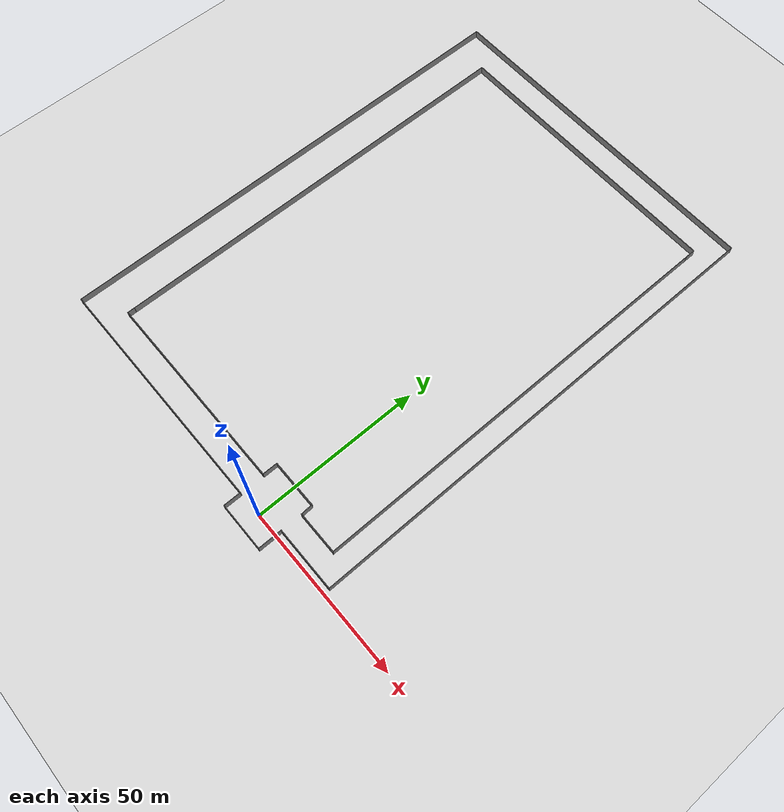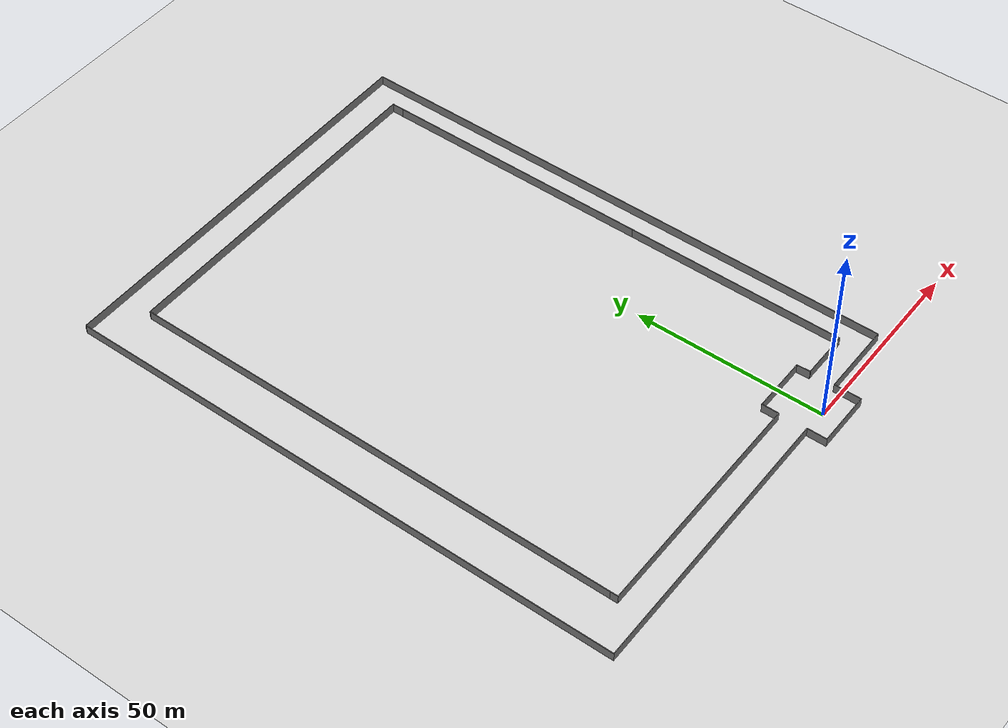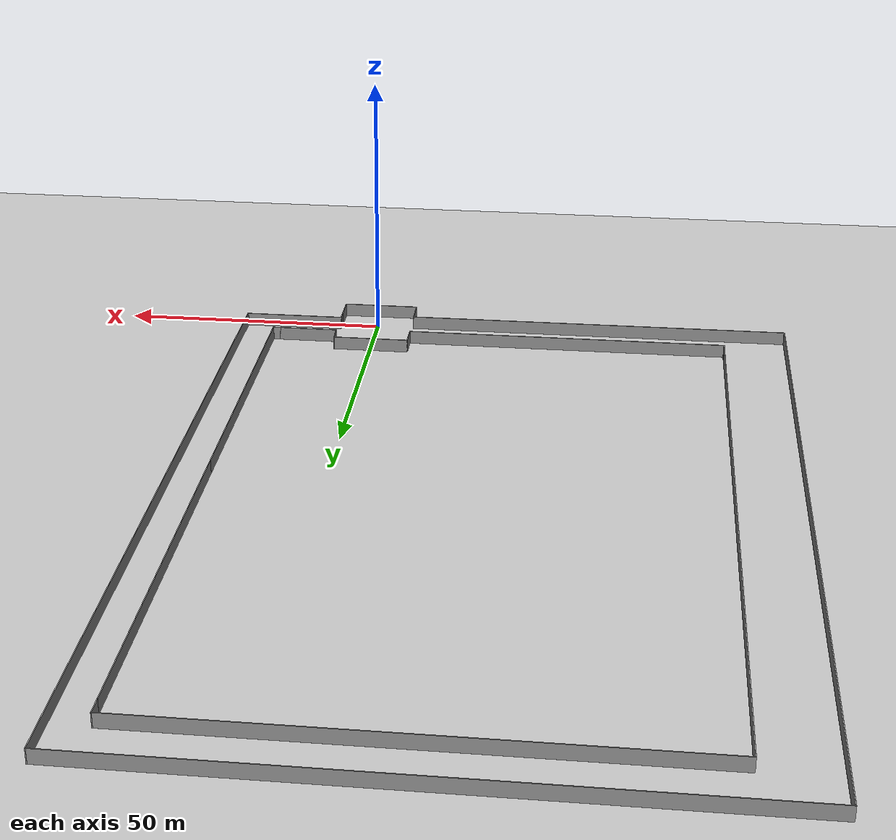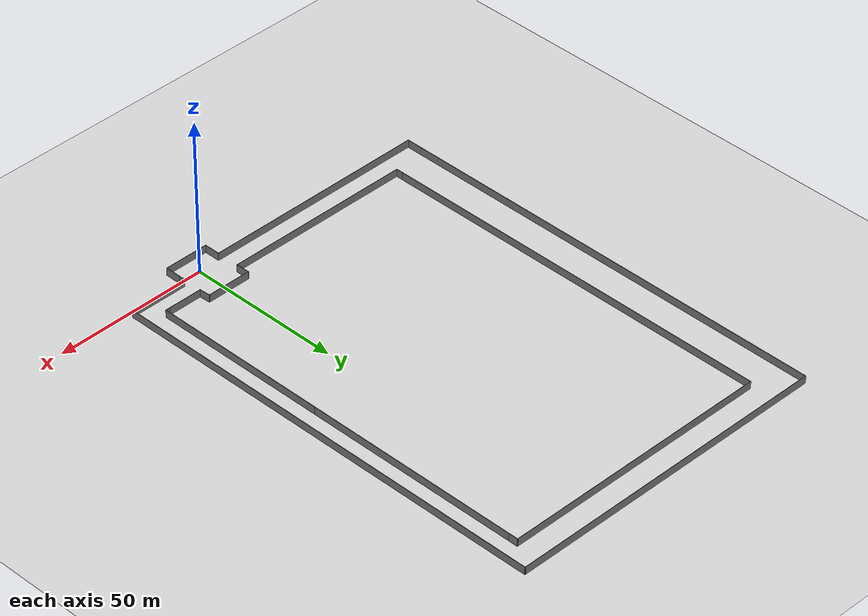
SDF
<?xml version="1.0" ?>
<sdf version="1.5">
  <world name="default">
    <!-- A global light source -->
    <include>
      <uri>model://sun</uri>
    </include>
    <!-- A ground plane -->
    <include>
      <uri>model://ground_plane</uri>
    </include>
    <include>
      <uri>model://asphalt_plane</uri>
    </include>
    <include>
      <uri>model://carto_hui</uri>
    </include>
    <physics name='default_physics' default='0' type='ode'>
      <gravity>0 0 -9.8066</gravity>
      <ode>
        <solver>
          <type>quick</type>
          <iters>10</iters>
          <sor>1.3</sor>
          <use_dynamic_moi_rescaling>0</use_dynamic_moi_rescaling>
        </solver>
        <constraints>
          <cfm>0</cfm>
          <erp>0.2</erp>
          <contact_max_correcting_vel>100</contact_max_correcting_vel>
          <contact_surface_layer>0.001</contact_surface_layer>
        </constraints>
      </ode>
      <max_step_size>0.004</max_step_size>
      <real_time_factor>1</real_time_factor>
      <real_time_update_rate>250</real_time_update_rate>
      <magnetic_field>6.0e-6 2.3e-5 -4.2e-5</magnetic_field>
    </physics>
  </world>
</sdf>

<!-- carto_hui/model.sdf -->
<sdf version='1.6'>
  <model name='carto_hui'>
    <pose frame=''>-27.0875 71.1795 0 0 -0 0</pose>
    <link name='Wall_10'>
      <collision name='Wall_10_Collision'>
        <geometry>
          <box>
            <size>19 0.15 2.5</size>
          </box>
        </geometry>
        <pose frame=''>0 0 1.25 0 -0 0</pose>
      </collision>
      <visual name='Wall_10_Visual'>
        <pose frame=''>0 0 1.25 0 -0 0</pose>
        <geometry>
          <box>
            <size>19 0.15 2.5</size>
          </box>
        </geometry>
        <material>
          <script>
            <uri>file://media/materials/scripts/gazebo.material</uri>
            <name>Gazebo/Grey</name>
          </script>
          <ambient>1 1 1 1</ambient>
        </material>
        <meta>
          <layer>0</layer>
        </meta>
      </visual>
      <pose frame=''>43.7501 -69.45 0 0 -0 0</pose>
    </link>
    <link name='Wall_11'>
      <collision name='Wall_11_Collision'>
        <geometry>
          <box>
            <size>146 0.15 2.5</size>
          </box>
        </geometry>
        <pose frame=''>0 0 1.25 0 -0 0</pose>
      </collision>
      <visual name='Wall_11_Visual'>
        <pose frame=''>0 0 1.25 0 -0 0</pose>
        <geometry>
          <box>
            <size>146 0.15 2.5</size>
          </box>
        </geometry>
        <material>
          <script>
            <uri>file://media/materials/scripts/gazebo.material</uri>
            <name>Gazebo/Grey</name>
          </script>
          <ambient>1 1 1 1</ambient>
        </material>
        <meta>
          <layer>0</layer>
        </meta>
      </visual>
      <pose frame=''>53.1751 3.475 0 0 -0 1.5708</pose>
    </link>
    <link name='Wall_12'>
      <collision name='Wall_12_Collision'>
        <geometry>
          <box>
            <size>106.5 0.15 2.5</size>
          </box>
        </geometry>
        <pose frame=''>0 0 1.25 0 -0 0</pose>
      </collision>
      <visual name='Wall_12_Visual'>
        <pose frame=''>0 0 1.25 0 -0 0</pose>
        <geometry>
          <box>
            <size>106.5 0.15 2.5</size>
          </box>
        </geometry>
        <material>
          <script>
            <uri>file://media/materials/scripts/gazebo.material</uri>
            <name>Gazebo/Grey</name>
          </script>
          <ambient>1 1 1 1</ambient>
        </material>
        <meta>
          <layer>0</layer>
        </meta>
      </visual>
      <pose frame=''>7e-05 76.4 0 0 -0 3.14159</pose>
    </link>
    <link name='Wall_13'>
      <collision name='Wall_13_Collision'>
        <geometry>
          <box>
            <size>148 0.15 2.5</size>
          </box>
        </geometry>
        <pose frame=''>0 0 1.25 0 -0 0</pose>
      </collision>
      <visual name='Wall_13_Visual'>
        <pose frame=''>0 0 1.25 0 -0 0</pose>
        <geometry>
          <box>
            <size>148 0.15 2.5</size>
          </box>
        </geometry>
        <material>
          <script>
            <uri>file://media/materials/scripts/gazebo.material</uri>
            <name>Gazebo/Grey</name>
          </script>
          <ambient>1 1 1 1</ambient>
        </material>
        <meta>
          <layer>0</layer>
        </meta>
      </visual>
      <pose frame=''>-53.1749 2.475 0 0 -0 -1.5708</pose>
    </link>
    <link name='Wall_14'>
      <collision name='Wall_14_Collision'>
        <geometry>
          <box>
            <size>73.3002 0.15 2.5</size>
          </box>
        </geometry>
        <pose frame=''>0 0 1.25 0 -0 0</pose>
      </collision>
      <visual name='Wall_14_Visual'>
        <pose frame=''>0 0 1.25 0 -0 0</pose>
        <geometry>
          <box>
            <size>73.3002 0.15 2.5</size>
          </box>
        </geometry>
        <material>
          <script>
            <uri>file://media/materials/scripts/gazebo.material</uri>
            <name>Gazebo/Grey</name>
          </script>
          <ambient>1 1 1 1</ambient>
        </material>
        <meta>
          <layer>0</layer>
        </meta>
      </visual>
      <pose frame=''>-16.5999 -71.375 0 0 -0 0.002051</pose>
    </link>
    <link name='Wall_16'>
      <collision name='Wall_16_Collision'>
        <geometry>
          <box>
            <size>11.25 0.15 2.5</size>
          </box>
        </geometry>
        <pose frame=''>0 0 1.25 0 -0 0</pose>
      </collision>
      <visual name='Wall_16_Visual'>
        <pose frame=''>0 0 1.25 0 -0 0</pose>
        <geometry>
          <box>
            <size>11.25 0.15 2.5</size>
          </box>
        </geometry>
        <material>
          <script>
            <uri>file://media/materials/scripts/gazebo.material</uri>
            <name>Gazebo/Grey</name>
          </script>
          <ambient>1 1 1 1</ambient>
        </material>
        <meta>
          <layer>0</layer>
        </meta>
      </visual>
      <pose frame=''>39.941 -63.1183 0 0 -0 0</pose>
    </link>
    <link name='Wall_17'>
      <collision name='Wall_17_Collision'>
        <geometry>
          <box>
            <size>1.5 0.15 2.5</size>
          </box>
        </geometry>
        <pose frame=''>0 0 1.25 0 -0 0</pose>
      </collision>
      <visual name='Wall_17_Visual'>
        <pose frame=''>0 0 1.25 0 -0 0</pose>
        <geometry>
          <box>
            <size>1.5 0.15 2.5</size>
          </box>
        </geometry>
        <material>
          <script>
            <uri>file://media/materials/scripts/gazebo.material</uri>
            <name>Gazebo/Grey</name>
          </script>
          <ambient>1 1 1 1</ambient>
        </material>
        <meta>
          <layer>0</layer>
        </meta>
      </visual>
      <pose frame=''>46.166 -63.1183 0 0 -0 0</pose>
    </link>
    <link name='Wall_18'>
      <collision name='Wall_18_Collision'>
        <geometry>
          <box>
            <size>57.5 0.15 2.5</size>
          </box>
        </geometry>
        <pose frame=''>0 0 1.25 0 -0 0</pose>
      </collision>
      <visual name='Wall_18_Visual'>
        <pose frame=''>0 0 1.25 0 -0 0</pose>
        <geometry>
          <box>
            <size>57.5 0.15 2.5</size>
          </box>
        </geometry>
        <material>
          <script>
            <uri>file://media/materials/scripts/gazebo.material</uri>
            <name>Gazebo/Grey</name>
          </script>
          <ambient>1 1 1 1</ambient>
        </material>
        <meta>
          <layer>0</layer>
        </meta>
      </visual>
      <pose frame=''>46.841 -34.4433 0 0 -0 1.5708</pose>
    </link>
    <link name='Wall_19'>
      <collision name='Wall_19_Collision'>
        <geometry>
          <box>
            <size>70.5 0.15 2.5</size>
          </box>
        </geometry>
        <pose frame=''>0 0 1.25 0 -0 0</pose>
      </collision>
      <visual name='Wall_19_Visual'>
        <pose frame=''>0 0 1.25 0 -0 0</pose>
        <geometry>
          <box>
            <size>70.5 0.15 2.5</size>
          </box>
        </geometry>
        <material>
          <script>
            <uri>file://media/materials/scripts/gazebo.material</uri>
            <name>Gazebo/Grey</name>
          </script>
          <ambient>1 1 1 1</ambient>
        </material>
        <meta>
          <layer>0</layer>
        </meta>
      </visual>
      <pose frame=''>46.841 29.4067 0 0 -0 1.5708</pose>
    </link>
    <link name='Wall_20'>
      <collision name='Wall_20_Collision'>
        <geometry>
          <box>
            <size>3.25 0.15 2.5</size>
          </box>
        </geometry>
        <pose frame=''>0 0 1.25 0 -0 0</pose>
      </collision>
      <visual name='Wall_20_Visual'>
        <pose frame=''>0 0 1.25 0 -0 0</pose>
        <geometry>
          <box>
            <size>3.25 0.15 2.5</size>
          </box>
        </geometry>
        <material>
          <script>
            <uri>file://media/materials/scripts/gazebo.material</uri>
            <name>Gazebo/Grey</name>
          </script>
          <ambient>1 1 1 1</ambient>
        </material>
        <meta>
          <layer>0</layer>
        </meta>
      </visual>
      <pose frame=''>46.841 66.1317 0 0 -0 1.5708</pose>
    </link>
    <link name='Wall_21'>
      <collision name='Wall_21_Collision'>
        <geometry>
          <box>
            <size>88.25 0.15 2.5</size>
          </box>
        </geometry>
        <pose frame=''>0 0 1.25 0 -0 0</pose>
      </collision>
      <visual name='Wall_21_Visual'>
        <pose frame=''>0 0 1.25 0 -0 0</pose>
        <geometry>
          <box>
            <size>88.25 0.15 2.5</size>
          </box>
        </geometry>
        <material>
          <script>
            <uri>file://media/materials/scripts/gazebo.material</uri>
            <name>Gazebo/Grey</name>
          </script>
          <ambient>1 1 1 1</ambient>
        </material>
        <meta>
          <layer>0</layer>
        </meta>
      </visual>
      <pose frame=''>2.79098 67.6817 0 0 -0 3.14159</pose>
    </link>
    <link name='Wall_22'>
      <collision name='Wall_22_Collision'>
        <geometry>
          <box>
            <size>129.75 0.15 2.5</size>
          </box>
        </geometry>
        <pose frame=''>0 0 1.25 0 -0 0</pose>
      </collision>
      <visual name='Wall_22_Visual'>
        <pose frame=''>0 0 1.25 0 -0 0</pose>
        <geometry>
          <box>
            <size>129.75 0.15 2.5</size>
          </box>
        </geometry>
        <material>
          <script>
            <uri>file://media/materials/scripts/gazebo.material</uri>
            <name>Gazebo/Grey</name>
          </script>
          <ambient>1 1 1 1</ambient>
        </material>
        <meta>
          <layer>0</layer>
        </meta>
      </visual>
      <pose frame=''>-41.259 2.88171 0 0 -0 -1.5708</pose>
    </link>
    <link name='Wall_23'>
      <collision name='Wall_23_Collision'>
        <geometry>
          <box>
            <size>2.25 0.15 2.5</size>
          </box>
        </geometry>
        <pose frame=''>0 0 1.25 0 -0 0</pose>
      </collision>
      <visual name='Wall_23_Visual'>
        <pose frame=''>0 0 1.25 0 -0 0</pose>
        <geometry>
          <box>
            <size>2.25 0.15 2.5</size>
          </box>
        </geometry>
        <material>
          <script>
            <uri>file://media/materials/scripts/gazebo.material</uri>
            <name>Gazebo/Grey</name>
          </script>
          <ambient>1 1 1 1</ambient>
        </material>
        <meta>
          <layer>0</layer>
        </meta>
      </visual>
      <pose frame=''>-41.259 -62.9683 0 0 -0 -1.5708</pose>
    </link>
    <link name='Wall_24'>
      <collision name='Wall_24_Collision'>
        <geometry>
          <box>
            <size>61.25 0.15 2.5</size>
          </box>
        </geometry>
        <pose frame=''>0 0 1.25 0 -0 0</pose>
      </collision>
      <visual name='Wall_24_Visual'>
        <pose frame=''>0 0 1.25 0 -0 0</pose>
        <geometry>
          <box>
            <size>61.25 0.15 2.5</size>
          </box>
        </geometry>
        <material>
          <script>
            <uri>file://media/materials/scripts/gazebo.material</uri>
            <name>Gazebo/Grey</name>
          </script>
          <ambient>1 1 1 1</ambient>
        </material>
        <meta>
          <layer>0</layer>
        </meta>
      </visual>
      <pose frame=''>-10.709 -64.0183 0 0 -0 0</pose>
    </link>
    <link name='Wall_25'>
      <collision name='Wall_25_Collision'>
        <geometry>
          <box>
            <size>4.5 0.15 2.5</size>
          </box>
        </geometry>
        <pose frame=''>0 0 1.25 0 -0 0</pose>
      </collision>
      <visual name='Wall_25_Visual'>
        <pose frame=''>0 0 1.25 0 -0 0</pose>
        <geometry>
          <box>
            <size>4.5 0.15 2.5</size>
          </box>
        </geometry>
        <material>
          <script>
            <uri>file://media/materials/scripts/gazebo.material</uri>
            <name>Gazebo/Grey</name>
          </script>
          <ambient>1 1 1 1</ambient>
        </material>
        <meta>
          <layer>0</layer>
        </meta>
      </visual>
      <pose frame=''>19.841 -61.8433 0 0 -0 1.5708</pose>
    </link>
    <link name='Wall_26'>
      <collision name='Wall_26_Collision'>
        <geometry>
          <box>
            <size>14.5 0.15 2.5</size>
          </box>
        </geometry>
        <pose frame=''>0 0 1.25 0 -0 0</pose>
      </collision>
      <visual name='Wall_26_Visual'>
        <pose frame=''>0 0 1.25 0 -0 0</pose>
        <geometry>
          <box>
            <size>14.5 0.15 2.5</size>
          </box>
        </geometry>
        <material>
          <script>
            <uri>file://media/materials/scripts/gazebo.material</uri>
            <name>Gazebo/Grey</name>
          </script>
          <ambient>1 1 1 1</ambient>
        </material>
        <meta>
          <layer>0</layer>
        </meta>
      </visual>
      <pose frame=''>27.016 -59.6683 0 0 -0 0</pose>
    </link>
    <link name='Wall_27'>
      <collision name='Wall_27_Collision'>
        <geometry>
          <box>
            <size>3.60579 0.15 2.5</size>
          </box>
        </geometry>
        <pose frame=''>0 0 1.25 0 -0 0</pose>
      </collision>
      <visual name='Wall_27_Visual'>
        <pose frame=''>0 0 1.25 0 -0 0</pose>
        <geometry>
          <box>
            <size>3.60579 0.15 2.5</size>
          </box>
        </geometry>
        <material>
          <script>
            <uri>file://media/materials/scripts/gazebo.material</uri>
            <name>Gazebo/Grey</name>
          </script>
          <ambient>1 1 1 1</ambient>
        </material>
        <meta>
          <layer>0</layer>
        </meta>
      </visual>
      <pose frame=''>34.291 -61.3933 0 0 -0 -1.51289</pose>
    </link>
    <link name='Wall_6'>
      <collision name='Wall_6_Collision'>
        <geometry>
          <box>
            <size>5.25 0.15 2.5</size>
          </box>
        </geometry>
        <pose frame=''>0 0 1.25 0 -0 0</pose>
      </collision>
      <visual name='Wall_6_Visual'>
        <pose frame=''>0 0 1.25 0 -0 0</pose>
        <geometry>
          <box>
            <size>5.25 0.15 2.5</size>
          </box>
        </geometry>
        <material>
          <script>
            <uri>file://media/materials/scripts/gazebo.material</uri>
            <name>Gazebo/Grey</name>
          </script>
          <ambient>1 1 1 1</ambient>
        </material>
        <meta>
          <layer>0</layer>
        </meta>
      </visual>
      <pose frame=''>19.9751 -73.85 0 0 -0 -1.5708</pose>
    </link>
    <link name='Wall_7'>
      <collision name='Wall_7_Collision'>
        <geometry>
          <box>
            <size>14.5 0.15 2.5</size>
          </box>
        </geometry>
        <pose frame=''>0 0 1.25 0 -0 0</pose>
      </collision>
      <visual name='Wall_7_Visual'>
        <pose frame=''>0 0 1.25 0 -0 0</pose>
        <geometry>
          <box>
            <size>14.5 0.15 2.5</size>
          </box>
        </geometry>
        <material>
          <script>
            <uri>file://media/materials/scripts/gazebo.material</uri>
            <name>Gazebo/Grey</name>
          </script>
          <ambient>1 1 1 1</ambient>
        </material>
        <meta>
          <layer>0</layer>
        </meta>
      </visual>
      <pose frame=''>27.1501 -76.4 0 0 -0 0</pose>
    </link>
    <link name='Wall_8'>
      <collision name='Wall_8_Collision'>
        <geometry>
          <box>
            <size>5.25 0.15 2.5</size>
          </box>
        </geometry>
        <pose frame=''>0 0 1.25 0 -0 0</pose>
      </collision>
      <visual name='Wall_8_Visual'>
        <pose frame=''>0 0 1.25 0 -0 0</pose>
        <geometry>
          <box>
            <size>5.25 0.15 2.5</size>
          </box>
        </geometry>
        <material>
          <script>
            <uri>file://media/materials/scripts/gazebo.material</uri>
            <name>Gazebo/Grey</name>
          </script>
          <ambient>1 1 1 1</ambient>
        </material>
        <meta>
          <layer>0</layer>
        </meta>
      </visual>
      <pose frame=''>34.3251 -73.85 0 0 -0 1.5708</pose>
    </link>
    <link name='Wall_9'>
      <collision name='Wall_9_Collision'>
        <geometry>
          <box>
            <size>2 0.15 2.5</size>
          </box>
        </geometry>
        <pose frame=''>0 0 1.25 0 -0 0</pose>
      </collision>
      <visual name='Wall_9_Visual'>
        <pose frame=''>0 0 1.25 0 -0 0</pose>
        <geometry>
          <box>
            <size>2 0.15 2.5</size>
          </box>
        </geometry>
        <material>
          <script>
            <uri>file://media/materials/scripts/gazebo.material</uri>
            <name>Gazebo/Grey</name>
          </script>
          <ambient>1 1 1 1</ambient>
        </material>
        <meta>
          <layer>0</layer>
        </meta>
      </visual>
      <pose frame=''>34.3251 -70.375 0 0 -0 1.5708</pose>
    </link>
    <static>1</static>
  </model>
</sdf>
